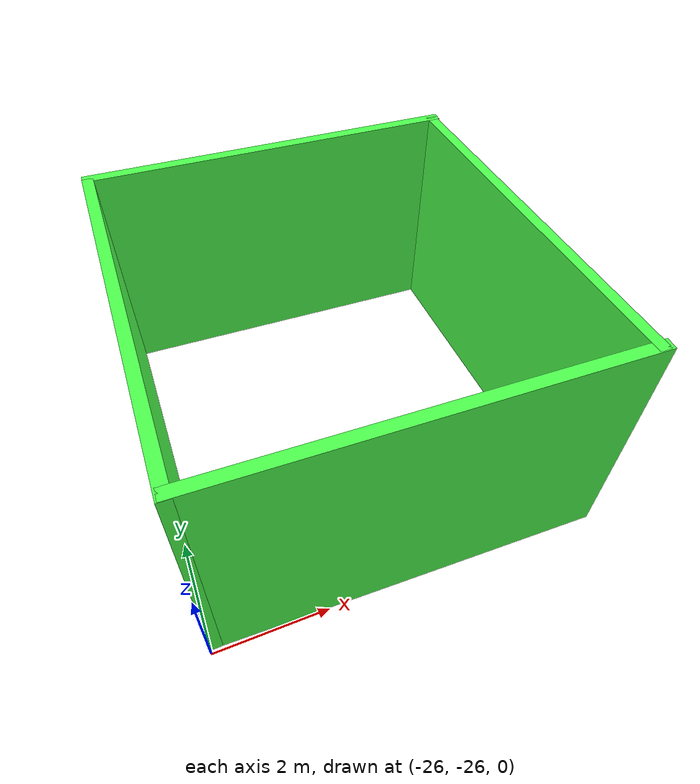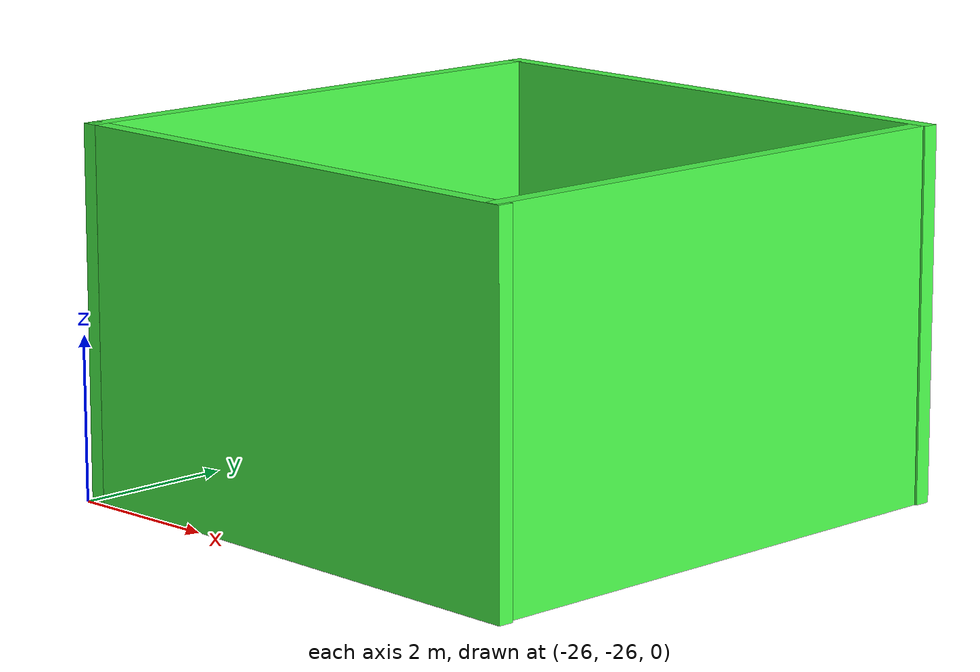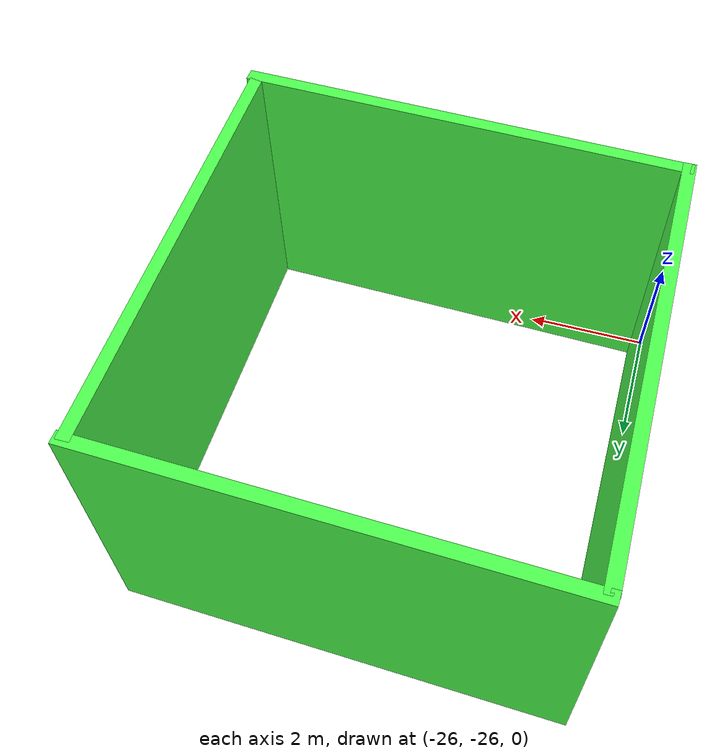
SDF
<sdf version="1.7">
 <world name="default">
  <model name="wall_clone_4">
   <pose>-22.5 -22.5 2.25 0 -0 0</pose>
   <frame name="closed_green_wall::__model__" attached_to="closed_green_wall::link_0">
    <pose relative_to="__model__">0 0 0 0 -0 0</pose>
   </frame>
   <link name="closed_green_wall::link_0">
    <inertial>
     <mass>1</mass>
     <inertia>
      <ixx>0.166667</ixx>
      <ixy>0</ixy>
      <ixz>0</ixz>
      <iyy>0.166667</iyy>
      <iyz>0</iyz>
      <izz>0.166667</izz>
     </inertia>
    </inertial>
    <pose relative_to="closed_green_wall::__model__">3.37098 -0.107634 -0 0 -0 0</pose>
    <visual name="visual">
     <geometry><box><size>0.2 7 4.5</size></box></geometry>
     <material>
      <lighting>1</lighting>
      <script><uri>file://media/materials/scripts/gazebo.material</uri><name>Gazebo/Grey</name></script>
      <shader type="vertex"><normal_map>__default__</normal_map></shader>
      <ambient>0.3 1 0.3 1</ambient>
      <diffuse>0.7 0.7 0.7 1</diffuse>
      <specular>0.01 0.01 0.01 1</specular>
      <emissive>0 0 0 1</emissive>
     </material>
    </visual>
    <collision name="collision">
     <geometry><box><size>0.2 7 4.5</size></box></geometry>
     <surface>
      <friction>
       <ode><mu>1</mu><mu2>1</mu2><fdir1>0 0 0</fdir1><slip1>0</slip1><slip2>0</slip2></ode>
       <torsional>
        <coefficient>1</coefficient>
        <patch_radius>0</patch_radius>
        <surface_radius>0</surface_radius>
        <use_patch_radius>1</use_patch_radius>
        <ode><slip>0</slip></ode>
       </torsional>
      </friction>
      <bounce><restitution_coefficient>0</restitution_coefficient><threshold>1e+06</threshold></bounce>
      <contact>
       <collide_without_contact>0</collide_without_contact>
       <collide_without_contact_bitmask>1</collide_without_contact_bitmask>
       <collide_bitmask>1</collide_bitmask>
       <ode>
        <soft_cfm>0</soft_cfm>
        <soft_erp>0.2</soft_erp>
        <kp>1e+13</kp>
        <kd>1</kd>
        <max_vel>0.01</max_vel>
        <min_depth>0</min_depth>
       </ode>
       <bullet>
        <split_impulse>1</split_impulse>
        <split_impulse_penetration_threshold>-0.01</split_impulse_penetration_threshold>
        <soft_cfm>0</soft_cfm>
        <soft_erp>0.2</soft_erp>
        <kp>1e+13</kp>
        <kd>1</kd>
       </bullet>
      </contact>
     </surface>
    </collision>
   </link>
   <link name="closed_green_wall::link_0_clone">
    <inertial>
     <mass>1</mass>
     <inertia>
      <ixx>0.166667</ixx>
      <ixy>0</ixy>
      <ixz>0</ixz>
      <iyy>0.166667</iyy>
      <iyz>0</iyz>
      <izz>0.166667</izz>
     </inertia>
    </inertial>
    <pose relative_to="closed_green_wall::__model__">0.024232 -3.42805 -0 0 0 -1.59986</pose>
    <visual name="visual">
     <geometry><box><size>0.2 7 4.5</size></box></geometry>
     <material>
      <lighting>1</lighting>
      <script><uri>file://media/materials/scripts/gazebo.material</uri><name>Gazebo/Grey</name></script>
      <shader type="vertex"><normal_map>__default__</normal_map></shader>
      <ambient>0.3 1 0.3 1</ambient>
      <diffuse>0.7 0.7 0.7 1</diffuse>
      <specular>0.01 0.01 0.01 1</specular>
      <emissive>0 0 0 1</emissive>
     </material>
    </visual>
    <collision name="collision">
     <geometry><box><size>0.2 7 4.5</size></box></geometry>
     <surface>
      <friction>
       <ode><mu>1</mu><mu2>1</mu2><fdir1>0 0 0</fdir1><slip1>0</slip1><slip2>0</slip2></ode>
       <torsional>
        <coefficient>1</coefficient>
        <patch_radius>0</patch_radius>
        <surface_radius>0</surface_radius>
        <use_patch_radius>1</use_patch_radius>
        <ode><slip>0</slip></ode>
       </torsional>
      </friction>
      <bounce><restitution_coefficient>0</restitution_coefficient><threshold>1e+06</threshold></bounce>
      <contact>
       <collide_without_contact>0</collide_without_contact>
       <collide_without_contact_bitmask>1</collide_without_contact_bitmask>
       <collide_bitmask>1</collide_bitmask>
       <ode>
        <soft_cfm>0</soft_cfm>
        <soft_erp>0.2</soft_erp>
        <kp>1e+13</kp>
        <kd>1</kd>
        <max_vel>0.01</max_vel>
        <min_depth>0</min_depth>
       </ode>
       <bullet>
        <split_impulse>1</split_impulse>
        <split_impulse_penetration_threshold>-0.01</split_impulse_penetration_threshold>
        <soft_cfm>0</soft_cfm>
        <soft_erp>0.2</soft_erp>
        <kp>1e+13</kp>
        <kd>1</kd>
       </bullet>
      </contact>
     </surface>
    </collision>
   </link>
   <link name="closed_green_wall::link_0_clone_0">
    <inertial>
     <mass>1</mass>
     <inertia>
      <ixx>0.166667</ixx>
      <ixy>0</ixy>
      <ixz>0</ixz>
      <iyy>0.166667</iyy>
      <iyz>0</iyz>
      <izz>0.166667</izz>
     </inertia>
    </inertial>
    <pose relative_to="closed_green_wall::__model__">-3.40001 0.065208 -0 0 -0 0</pose>
    <visual name="visual">
     <geometry><box><size>0.2 7 4.5</size></box></geometry>
     <material>
      <lighting>1</lighting>
      <script><uri>file://media/materials/scripts/gazebo.material</uri><name>Gazebo/Grey</name></script>
      <shader type="vertex"><normal_map>__default__</normal_map></shader>
      <ambient>0.3 1 0.3 1</ambient>
      <diffuse>0.7 0.7 0.7 1</diffuse>
      <specular>0.01 0.01 0.01 1</specular>
      <emissive>0 0 0 1</emissive>
     </material>
    </visual>
    <collision name="collision">
     <geometry><box><size>0.2 7 4.5</size></box></geometry>
     <surface>
      <friction>
       <ode><mu>1</mu><mu2>1</mu2><fdir1>0 0 0</fdir1><slip1>0</slip1><slip2>0</slip2></ode>
       <torsional>
        <coefficient>1</coefficient>
        <patch_radius>0</patch_radius>
        <surface_radius>0</surface_radius>
        <use_patch_radius>1</use_patch_radius>
        <ode><slip>0</slip></ode>
       </torsional>
      </friction>
      <bounce><restitution_coefficient>0</restitution_coefficient><threshold>1e+06</threshold></bounce>
      <contact>
       <collide_without_contact>0</collide_without_contact>
       <collide_without_contact_bitmask>1</collide_without_contact_bitmask>
       <collide_bitmask>1</collide_bitmask>
       <ode>
        <soft_cfm>0</soft_cfm>
        <soft_erp>0.2</soft_erp>
        <kp>1e+13</kp>
        <kd>1</kd>
        <max_vel>0.01</max_vel>
        <min_depth>0</min_depth>
       </ode>
       <bullet>
        <split_impulse>1</split_impulse>
        <split_impulse_penetration_threshold>-0.01</split_impulse_penetration_threshold>
        <soft_cfm>0</soft_cfm>
        <soft_erp>0.2</soft_erp>
        <kp>1e+13</kp>
        <kd>1</kd>
       </bullet>
      </contact>
     </surface>
    </collision>
   </link>
   <link name="closed_green_wall::link_0_clone_clone">
    <inertial>
     <mass>1</mass>
     <inertia>
      <ixx>0.166667</ixx>
      <ixy>0</ixy>
      <ixz>0</ixz>
      <iyy>0.166667</iyy>
      <iyz>0</iyz>
      <izz>0.166667</izz>
     </inertia>
    </inertial>
    <pose relative_to="closed_green_wall::__model__">0.004806 3.47046 -0 0 0 -1.59986</pose>
    <visual name="visual">
     <geometry><box><size>0.2 7 4.5</size></box></geometry>
     <material>
      <lighting>1</lighting>
      <script><uri>file://media/materials/scripts/gazebo.material</uri><name>Gazebo/Grey</name></script>
      <shader type="vertex"><normal_map>__default__</normal_map></shader>
      <ambient>0.3 1 0.3 1</ambient>
      <diffuse>0.7 0.7 0.7 1</diffuse>
      <specular>0.01 0.01 0.01 1</specular>
      <emissive>0 0 0 1</emissive>
     </material>
    </visual>
    <collision name="collision">
     <geometry><box><size>0.2 7 4.5</size></box></geometry>
     <surface>
      <friction>
       <ode><mu>1</mu><mu2>1</mu2><fdir1>0 0 0</fdir1><slip1>0</slip1><slip2>0</slip2></ode>
       <torsional>
        <coefficient>1</coefficient>
        <patch_radius>0</patch_radius>
        <surface_radius>0</surface_radius>
        <use_patch_radius>1</use_patch_radius>
        <ode><slip>0</slip></ode>
       </torsional>
      </friction>
      <bounce><restitution_coefficient>0</restitution_coefficient><threshold>1e+06</threshold></bounce>
      <contact>
       <collide_without_contact>0</collide_without_contact>
       <collide_without_contact_bitmask>1</collide_without_contact_bitmask>
       <collide_bitmask>1</collide_bitmask>
       <ode>
        <soft_cfm>0</soft_cfm>
        <soft_erp>0.2</soft_erp>
        <kp>1e+13</kp>
        <kd>1</kd>
        <max_vel>0.01</max_vel>
        <min_depth>0</min_depth>
       </ode>
       <bullet>
        <split_impulse>1</split_impulse>
        <split_impulse_penetration_threshold>-0.01</split_impulse_penetration_threshold>
        <soft_cfm>0</soft_cfm>
        <soft_erp>0.2</soft_erp>
        <kp>1e+13</kp>
        <kd>1</kd>
       </bullet>
      </contact>
     </surface>
    </collision>
   </link>
   <joint name="closed_green_wall::link_0_JOINT_1" type="fixed">
    <parent>closed_green_wall::link_0</parent>
    <child>closed_green_wall::link_0_clone_clone</child>
    <physics>
     <ode><limit><cfm>0</cfm><erp>0.2</erp></limit><suspension><cfm>0</cfm><erp>0.2</erp></suspension></ode>
    </physics>
   </joint>
   <joint name="closed_green_wall::link_0_clone_0_JOINT_3" type="fixed">
    <parent>closed_green_wall::link_0_clone_0</parent>
    <child>closed_green_wall::link_0_clone</child>
    <physics>
     <ode><limit><cfm>0</cfm><erp>0.2</erp></limit><suspension><cfm>0</cfm><erp>0.2</erp></suspension></ode>
    </physics>
   </joint>
   <joint name="closed_green_wall::link_0_clone_JOINT_0" type="fixed">
    <parent>closed_green_wall::link_0_clone</parent>
    <child>closed_green_wall::link_0</child>
    <physics>
     <ode><limit><cfm>0</cfm><erp>0.2</erp></limit><suspension><cfm>0</cfm><erp>0.2</erp></suspension></ode>
    </physics>
   </joint>
   <joint name="closed_green_wall::link_0_clone_clone_JOINT_2" type="fixed">
    <parent>closed_green_wall::link_0_clone_clone</parent>
    <child>closed_green_wall::link_0_clone_0</child>
    <physics>
     <ode><limit><cfm>0</cfm><erp>0.2</erp></limit><suspension><cfm>0</cfm><erp>0.2</erp></suspension></ode>
    </physics>
   </joint>
   <static>1</static>
  </model>
 </world>
</sdf>
